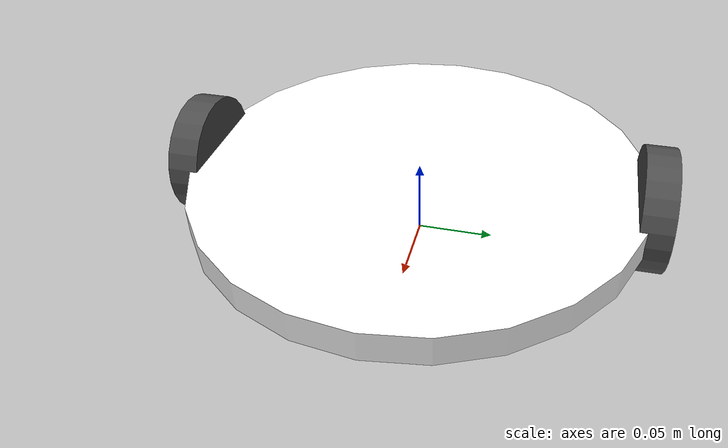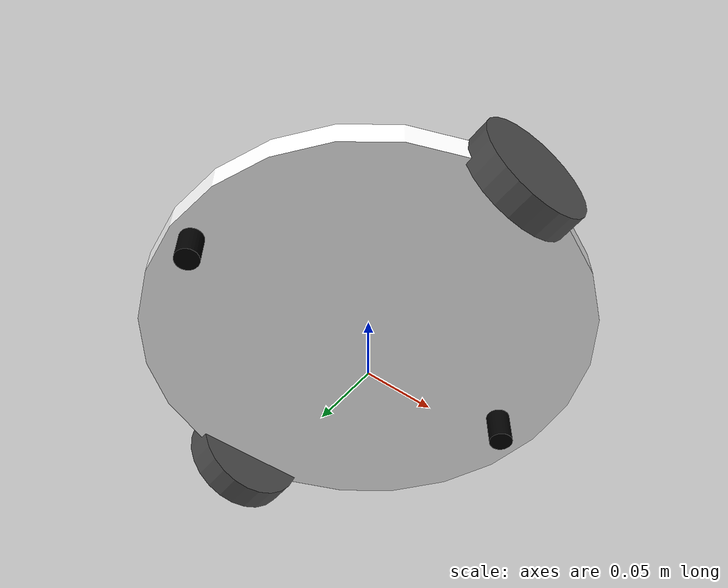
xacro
<?xml version="1.0"?>
<robot name="differential_wheeled_robot" xmlns:xacro="http://www.ros.org/wiki/xacro">

  <xacro:include filename="$(find mastering_ros_robot_description_pkg)/urdf/wheel.urdf.xacro" />

<!-- Defining the colors used in this robot -->
  <material name="Black">
    <color rgba="0.0 0.0 0.0 1.0"/>
  </material>

  <material name="Red">
    <color rgba="0.8 0.0 0.0 1.0"/>
  </material>

  <material name="White">
    <color rgba="1.0 1.0 1.0 1.0"/>
  </material>

  <!-- PROPERTY LIST -->
  <!--All units in m-kg-s-radians unit system -->
  <property name="M_PI" value="3.1415926535897931" />
  <property name="M_PI_2" value="1.570796327" />
  <property name="DEG_TO_RAD" value="0.017453293" />

  <!-- Main body radius and height -->
  <!-- Main Body Cylinder base   -->
  <property name="base_height" value="0.02" />
  <property name="base_radius" value="0.15" />
  <property name="base_mass" value="35" /> <!-- in kg-->

  <!-- caster wheel radius and height -->
  <!-- caster wheel mass -->
  <property name="caster_f_height" value="0.04" />
  <property name="caster_f_radius" value="0.008" />
  <property name="caster_f_mass" value="35" /> <!-- in kg-->

  <!-- caster wheel radius and height -->
  <!-- caster wheel mass -->
  <property name="caster_b_height" value="0.04" />
  <property name="caster_b_radius" value="0.008" />
  <property name="caster_b_mass" value="35" /> <!-- in kg-->

  <!-- Wheels -->
<!-- in kg-->

  <property name="base_x_origin_to_wheel_origin" value="0.25" />
  <property name="base_y_origin_to_wheel_origin" value="0.3" />
  <property name="base_z_origin_to_wheel_origin" value="0.0" />

  <!-- Macro for calculating inertia of cylinder -->
  <macro name="cylinder_inertia" params="m r h">
    <inertia  ixx="${m*(3*r*r+h*h)/12}" ixy = "0" ixz = "0"
              iyy="${m*(3*r*r+h*h)/12}" iyz = "0"
              izz="${m*r*r/2}" />
  </macro>

  <!-- BASE-FOOTPRINT -->
  <!-- base_footprint is a fictitious link(frame) that is on the ground right below base_link origin -->
  <link name="base_footprint">
    <inertial>
      <mass value="0.0001" />
      <origin xyz="0 0 0" />
      <inertia ixx="0.0001" ixy="0.0" ixz="0.0"
          iyy="0.0001" iyz="0.0"
          izz="0.0001" />
    </inertial>
    <visual>
        <origin xyz="0 0 0" rpy="0 0 0" />
        <geometry>
            <box size="0.001 0.001 0.001" />
        </geometry>
    </visual>
  </link>

  <gazebo reference="base_footprint">
    <turnGravityOff>false</turnGravityOff>
  </gazebo>

  <joint name="base_footprint_joint" type="fixed">
    <origin xyz="0 0 ${wheel_radius - base_z_origin_to_wheel_origin}" rpy="0 0 0" />
    <parent link="base_footprint"/>
    <child link="base_link" />
  </joint>

  <!-- BASE-LINK -->
  <!--Actual body/chassis of the robot-->
  <link name="base_link">
    <inertial>
      <mass value="${base_mass}" />
      <origin xyz="0 0 0" />
      <!--The 3x3 rotational inertia matrix. -->
        <cylinder_inertia  m="${base_mass}" r="${base_radius}" h="${base_height}" />

    </inertial>
    <visual>
      <origin xyz="0 0 0" rpy="0 0 0" />
      <geometry>

          <cylinder length="${base_height}" radius="${base_radius}" />

      </geometry>
      <material name="White" />
    </visual>
    <collision>
      <origin xyz="0 0 0" rpy="0 0 0 " />
      <geometry>

          <cylinder length="${base_height}" radius="${base_radius}" />

      </geometry>
    </collision>
  </link>
  <gazebo reference="base_link">
    <material>Gazebo/White</material>
    <turnGravityOff>false</turnGravityOff>
  </gazebo>

  <wheel fb="front" lr="right" parent="base_link" translateX="0" translateY="-0.5" flipY="-1"/>
  <wheel fb="front" lr="left" parent="base_link" translateX="0" translateY="0.5" flipY="-1"/>

 <joint name="caster_front_joint" type="fixed">
      <parent link="base_link"/>
      <child link="caster_front_link"/>
      <origin xyz="0.115 0.0 0.007" rpy="${-M_PI/2} 0 0"/>
    </joint>

    <link name="caster_front_link">

    <visual>
      <origin xyz="0 0.02 0" rpy="${M_PI/2} 0 0" />
      <geometry>

          <cylinder length="${caster_f_height}" radius="${caster_f_radius}" />

      </geometry>
      <material name="Black" />
    </visual>

      <collision>
        <geometry>
          <cylinder length="${caster_f_height}" radius="${caster_f_radius}" />
        </geometry>
        <origin rpy="0 0 0" xyz="0 0 0"/>
      </collision>
      <inertial>
        <mass value="0.01" />
        <origin xyz="0 0 0" />
        <inertia ixx="0.001" ixy="0.0" ixz="0.0"
                 iyy="0.001" iyz="0.0"
                 izz="0.001" />
      </inertial>
    </link>

    <joint name="caster_back_joint" type="fixed">
      <parent link="base_link"/>
      <child link="caster_back_link"/>
      <origin xyz="-0.135 0.0 0.009" rpy="${-M_PI/2} 0 0"/>
    </joint>
    <link name="caster_back_link">

    <visual>
      <origin xyz="0 0.02 0 " rpy="${M_PI/2} 0 0" />
      <geometry>

          <cylinder length="${caster_b_height}" radius="${caster_b_radius}" />

      </geometry>
      <material name="Black" />
    </visual>

      <collision>
        <geometry>
          <cylinder length="0.0176" radius="0.017"/>
        </geometry>
        <origin rpy="0 0 0" xyz="0 0 0"/>
      </collision>
      <inertial>
        <mass value="0.01" />
        <origin xyz="0 0 0" />
        <inertia ixx="0.001" ixy="0.0" ixz="0.0"
                 iyy="0.001" iyz="0.0"
                 izz="0.001" />
      </inertial>
    </link>

</robot>

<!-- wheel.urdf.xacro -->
<robot name="wheel" xmlns:xacro="http://www.ros.org/wiki/xacro">

  <!-- Wheels -->
  <property name="wheel_radius" value="0.04" />
  <property name="wheel_height" value="0.02" />
  <property name="wheel_mass" value="2.5" /> <!-- in kg-->

  <property name="base_x_origin_to_wheel_origin" value="0.25" />
  <property name="base_y_origin_to_wheel_origin" value="0.3" />
  <property name="base_z_origin_to_wheel_origin" value="0.0" />

  <macro name="cylinder_inertia" params="m r h">
    <inertia  ixx="${m*(3*r*r+h*h)/12}" ixy = "0" ixz = "0"
              iyy="${m*(3*r*r+h*h)/12}" iyz = "0"
              izz="${m*r*r/2}" />
  </macro>

  <xacro:macro name="wheel" params="fb lr parent translateX translateY flipY"> <!--fb : front, back ; lr: left, right -->
    <link name="${fb}_${lr}_wheel">
      <visual>
        <origin xyz="0 0 0" rpy="${flipY*M_PI/2} 0 0" />
        <geometry>
          <cylinder length="${wheel_height}" radius="${wheel_radius}" />
        </geometry>
        <material name="DarkGray" />
      </visual>
      <collision>
        <origin xyz="0 0 0" rpy="${flipY*M_PI/2} 0 0" />
        <geometry>
          <cylinder length="${wheel_height}" radius="${wheel_radius}" />
        </geometry>
      </collision>
      <inertial>
        <mass value="${wheel_mass}" />
        <origin xyz="0 0 0" />
        <cylinder_inertia  m="${wheel_mass}" r="${wheel_radius}" h="${wheel_height}" />
      </inertial>
    </link>

    <gazebo reference="${fb}_${lr}_wheel">
      <mu1 value="1.0"/>
      <mu2 value="1.0"/>
      <kp  value="10000000.0" />
      <kd  value="1.0" />
      <fdir1 value="1 0 0"/>
      <material>Gazebo/Grey</material>
      <turnGravityOff>false</turnGravityOff>
    </gazebo>

    <joint name="${fb}_${lr}_wheel_joint" type="continuous">
      <parent link="${parent}"/>
      <child link="${fb}_${lr}_wheel"/>
      <origin xyz="${translateX * base_x_origin_to_wheel_origin} ${translateY * base_y_origin_to_wheel_origin} ${base_z_origin_to_wheel_origin}" rpy="0 0 0" />
      <axis xyz="0 1 0" rpy="0 0 0" />
      <limit effort="100" velocity="100"/>
      <joint_properties damping="0.0" friction="0.0"/>
    </joint>

    <!-- Transmission is important to link the joints and the controller -->
    <transmission name="${fb}_${lr}_wheel_joint_trans">
      <type>transmission_interface/SimpleTransmission</type>
      <joint name="${fb}_${lr}_wheel_joint" />
      <actuator name="${fb}_${lr}_wheel_joint_motor">
        <hardwareInterface>EffortJointInterface</hardwareInterface>
        <mechanicalReduction>1</mechanicalReduction>
      </actuator>
    </transmission>

  </xacro:macro>
</robot>
